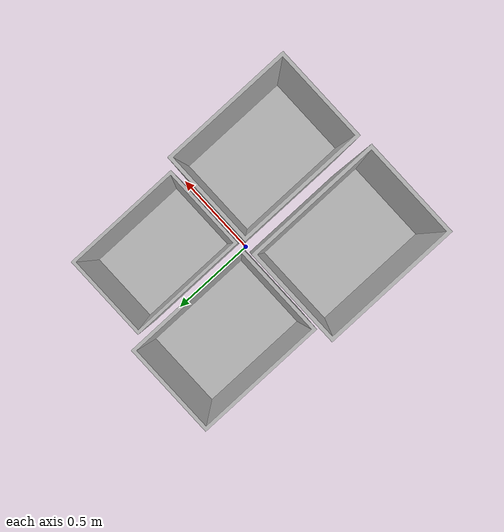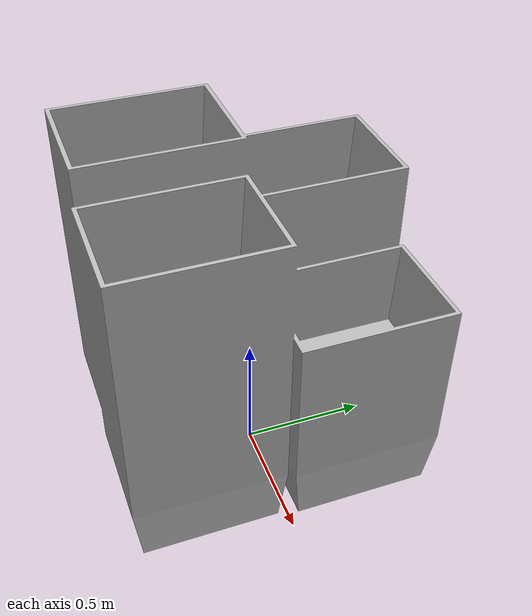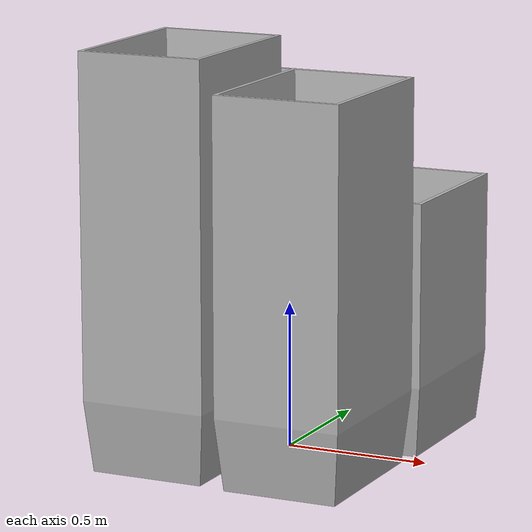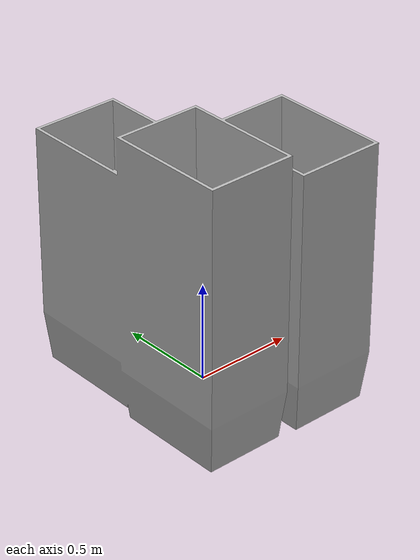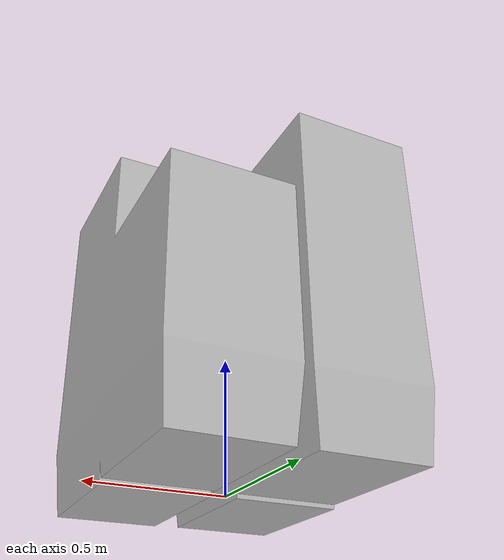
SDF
<?xml version='1.0'?>
<sdf version='1.6'>
  <model name='aws_robomaker_warehouse_Bucket_01_classic'>
    <link name='body'>
	  <inertial>
        <mass>2</mass>
        <pose frame=''>0 0 0 0 0 0</pose>
        <inertia>
          <ixx>0.570</ixx>
          <ixy>0</ixy>
          <ixz>0</ixz>
          <iyy>0.474</iyy>
          <iyz>0</iyz>
          <izz>0.391</izz>
        </inertia>
      </inertial>
      <pose frame=''>0 0 0 0 -0 0</pose>
      <self_collide>0</self_collide>
      <kinematic>0</kinematic>
      <gravity>1</gravity>
      <visual name='visual'>
        <geometry>
          <mesh>
            <uri>model://aws_robomaker_warehouse_Bucket_01_classic/meshes/aws_robomaker_warehouse_Bucket_01_classic_visual.DAE</uri>
          </mesh>
        </geometry>
		<meta> <layer> 1 </layer></meta>
      </visual>
      <collision name='collision_0'>
        <laser_retro>0</laser_retro>
        <max_contacts>10</max_contacts>
        <pose frame=''>0 0 0 0 -0 0</pose>
        <geometry>
          <mesh>
            <uri>model://aws_robomaker_warehouse_Bucket_01_classic/meshes/aws_robomaker_warehouse_Bucket_01_classic_collision.DAE</uri>
            <scale>1 1 1</scale>
          </mesh>
        </geometry>
		<surface>
          <friction>
            <ode>
              <mu>0.4</mu>
              <mu2>0.4</mu2>
              <fdir1>0 0 0</fdir1>
              <slip1>0</slip1>
              <slip2>0</slip2>
            </ode>
            <torsional>
              <coefficient>1</coefficient>
              <patch_radius>0</patch_radius>
              <surface_radius>0</surface_radius>
              <use_patch_radius>1</use_patch_radius>
              <ode>
                <slip>0</slip>
              </ode>
            </torsional>
          </friction>
        </surface>
      </collision>
    </link>
    <static>true</static>
  </model>
</sdf>
